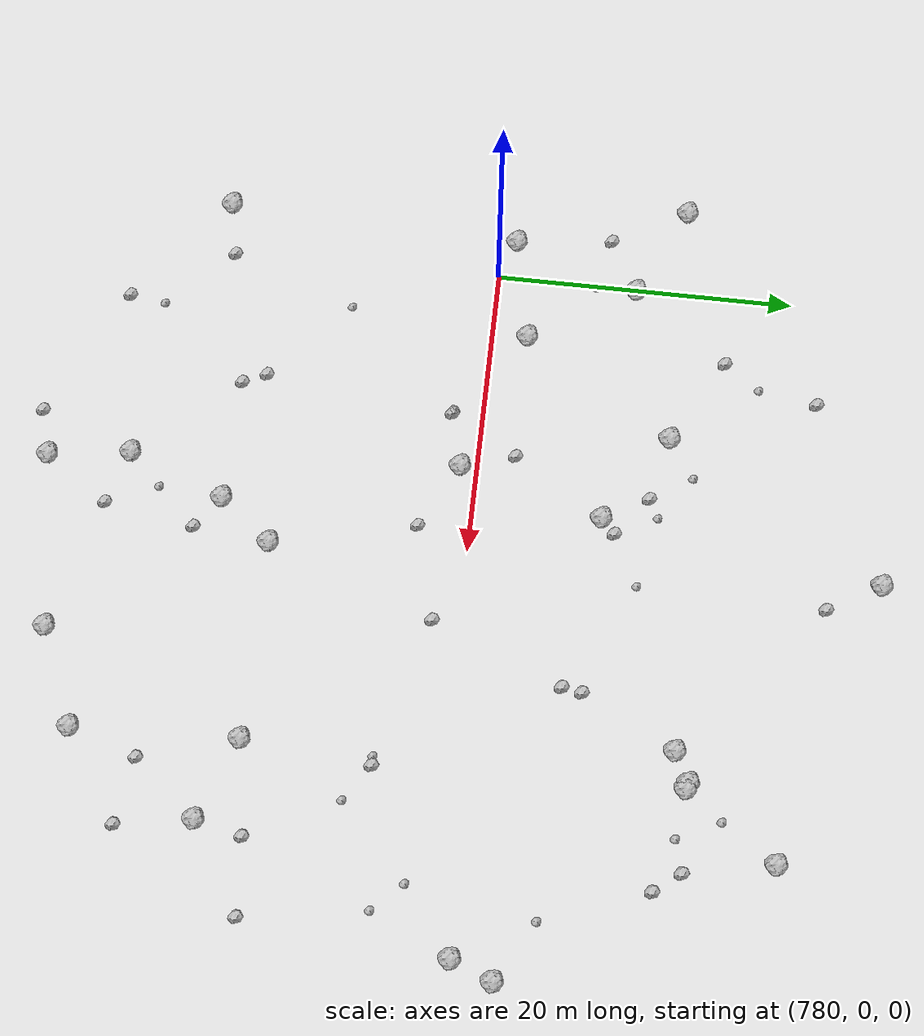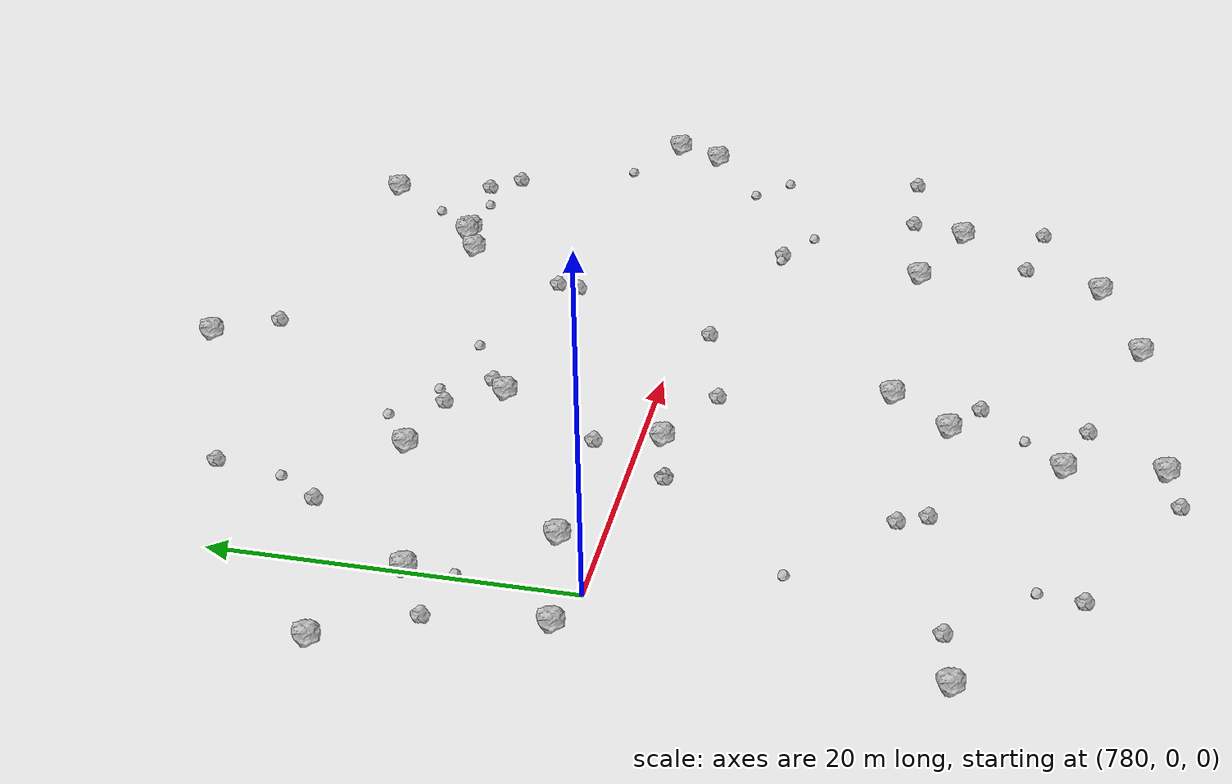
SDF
<sdf version="1.6">
 <world name="default">
  <include><uri>model://sun</uri></include>
  <model name="rock1_20_4">
   <include><uri>model://rock1</uri><pose>814.2956570211775 -12.995889982059378 0.5 0 0 0</pose></include>
  </model>
  <model name="rock1_20_5">
   <include><uri>model://rock1</uri><pose>800.9311852224407 -13.002387253428957 0.5 0 0 0</pose></include>
  </model>
  <model name="rock1_20_6">
   <include><uri>model://rock1</uri><pose>814.0952571455994 15.621522596809974 0.5 0 0 0</pose></include>
  </model>
  <model name="rock1_20_7">
   <include><uri>model://rock1</uri><pose>784.4181760202472 2.38059568060293 0.5 0 0 0</pose></include>
  </model>
  <model name="rock1_20_8">
   <include><uri>model://rock1</uri><pose>776.7105798004249 -18.79427382576591 0.5 0 0 0</pose></include>
  </model>
  <model name="rock1_20_9">
   <include><uri>model://rock1</uri><pose>795.6441213808278 -22.920252424329448 0.5 0 0 0</pose></include>
  </model>
  <model name="rock1_20_10">
   <include><uri>model://rock1</uri><pose>799.5822069820347 27.103136374244663 0.5 0 0 0</pose></include>
  </model>
  <model name="rock1_20_11">
   <include><uri>model://rock1</uri><pose>774.0054809005333 12.41190422425204 0.5 0 0 0</pose></include>
  </model>
  <model name="rock1_20_12">
   <include><uri>model://rock1</uri><pose>814.691424529872 -23.95948677520395 0.5 0 0 0</pose></include>
  </model>
  <model name="rock1_20_13">
   <include><uri>model://rock1</uri><pose>777.4399378765813 0.970843013332054 0.5 0 0 0</pose></include>
  </model>
  <model name="rock1_20_14">
   <include><uri>model://rock1</uri><pose>794.231892408434 -1.096677038264712 0.5 0 0 0</pose></include>
  </model>
  <model name="rock1_20_15">
   <include><uri>model://rock1</uri><pose>812.1009767616615 14.60600244683119 0.5 0 0 0</pose></include>
  </model>
  <model name="rock1_20_16">
   <include><uri>model://rock1</uri><pose>790.7954599089096 12.534567388479253 0.5 0 0 0</pose></include>
  </model>
  <model name="rock1_20_17">
   <include><uri>model://rock1</uri><pose>796.8880604455628 8.537743014936567 0.5 0 0 0</pose></include>
  </model>
  <model name="rock1_20_18">
   <include><uri>model://rock1</uri><pose>818.7313497944864 21.506388558471393 0.5 0 0 0</pose></include>
  </model>
  <model name="rock1_20_19">
   <include><uri>model://rock1</uri><pose>780.2422312361366 9.386300126803746 0.5 0 0 0</pose></include>
  </model>
  <model name="rock1_20_20">
   <include><uri>model://rock1</uri><pose>814.4821929335158 15.478554741264368 0.5 0 0 0</pose></include>
  </model>
  <model name="rock1_20_21">
   <include><uri>model://rock1</uri><pose>808.2178711605711 -26.606528269494277 0.5 0 0 0</pose></include>
  </model>
  <model name="rock1_20_22">
   <include><uri>model://rock1</uri><pose>798.1679765168304 -16.47847563490781 0.5 0 0 0</pose></include>
  </model>
  <model name="rock1_20_23">
   <include><uri>model://rock1</uri><pose>819.808153575163 -15.15194088388907 0.5 0 0 0</pose></include>
  </model>
  <model name="rock1_20_24">
   <include><uri>model://rock1</uri><pose>796.3752662934154 -28.38351896222941 0.5 0 0 0</pose></include>
  </model>
  <model name="rock1_20_25">
   <include><uri>model://rock1</uri><pose>827.921301379985 4.609823203540934 0.5 0 0 0</pose></include>
  </model>
  <model name="rock1_20_26">
   <include><uri>model://rock1</uri><pose>826.8131084467598 1.8626052285913985 0.5 0 0 0</pose></include>
  </model>
  <model name="rock2_20_0">
   <include><uri>model://rock2</uri><pose>789.7607518878974 -16.27439020572342 0.3 0 0 0</pose></include>
  </model>
  <model name="rock2_20_1">
   <include><uri>model://rock2</uri><pose>816.1858900143451 -19.38402429995875 0.3 0 0 0</pose></include>
  </model>
  <model name="rock2_20_2">
   <include><uri>model://rock2</uri><pose>820.6432070960407 -20.1448860328945 0.3 0 0 0</pose></include>
  </model>
  <model name="rock2_20_3">
   <include><uri>model://rock2</uri><pose>790.4643372028982 -2.0093286654084395 0.3 0 0 0</pose></include>
  </model>
  <model name="rock2_20_4">
   <include><uri>model://rock2</uri><pose>776.6207072468467 7.457035338786255 0.3 0 0 0</pose></include>
  </model>
  <model name="rock2_20_5">
   <include><uri>model://rock2</uri><pose>780.360129361689 -18.046840265286306 0.3 0 0 0</pose></include>
  </model>
  <model name="rock2_20_6">
   <include><uri>model://rock2</uri><pose>797.8257978768681 9.504377105047183 0.3 0 0 0</pose></include>
  </model>
  <model name="rock2_20_7">
   <include><uri>model://rock2</uri><pose>789.0155284134422 -14.691010447130008 0.3 0 0 0</pose></include>
  </model>
  <model name="rock2_20_8">
   <include><uri>model://rock2</uri><pose>784.2037395192972 -24.701157766862757 0.3 0 0 0</pose></include>
  </model>
  <model name="rock2_20_9">
   <include><uri>model://rock2</uri><pose>793.0812972692923 2.5103623135128714 0.3 0 0 0</pose></include>
  </model>
  <model name="rock2_20_10">
   <include><uri>model://rock2</uri><pose>787.215342838281 22.145075990664374 0.3 0 0 0</pose></include>
  </model>
  <model name="rock2_20_11">
   <include><uri>model://rock2</uri><pose>798.6341354290527 -3.3912522580984152 0.3 0 0 0</pose></include>
  </model>
  <model name="rock2_20_12">
   <include><uri>model://rock2</uri><pose>819.8650565970262 15.714480274466851 0.3 0 0 0</pose></include>
  </model>
  <model name="rock2_20_13">
   <include><uri>model://rock2</uri><pose>821.2249438173511 13.969794580571524 0.3 0 0 0</pose></include>
  </model>
  <model name="rock2_20_14">
   <include><uri>model://rock2</uri><pose>825.6327402855613 -11.628006118382071 0.3 0 0 0</pose></include>
  </model>
  <model name="rock2_20_15">
   <include><uri>model://rock2</uri><pose>784.902285686312 15.815749204771492 0.3 0 0 0</pose></include>
  </model>
  <model name="rock2_20_16">
   <include><uri>model://rock2</uri><pose>815.0707833260835 -4.425103600113541 0.3 0 0 0</pose></include>
  </model>
  <model name="rock2_20_17">
   <include><uri>model://rock2</uri><pose>790.3925794277559 -1.9828235229555382 0.3 0 0 0</pose></include>
  </model>
  <model name="rock2_20_18">
   <include><uri>model://rock2</uri><pose>800.3196574987094 -18.045047737912807 0.3 0 0 0</pose></include>
  </model>
  <model name="rock2_20_19">
   <include><uri>model://rock2</uri><pose>793.2198846996137 -29.19996315843892 0.3 0 0 0</pose></include>
  </model>
  <model name="rock2_20_20">
   <include><uri>model://rock2</uri><pose>808.6167296030164 7.084334356220779 0.3 0 0 0</pose></include>
  </model>
  <model name="rock2_20_21">
   <include><uri>model://rock2</uri><pose>808.8406321250761 8.405403308947925 0.3 0 0 0</pose></include>
  </model>
  <model name="rock2_20_22">
   <include><uri>model://rock2</uri><pose>795.1356328516068 11.598548014314773 0.3 0 0 0</pose></include>
  </model>
  <model name="rock2_20_23">
   <include><uri>model://rock2</uri><pose>801.5460046312621 23.64371995509328 0.3 0 0 0</pose></include>
  </model>
  <model name="rock2_20_24">
   <include><uri>model://rock2</uri><pose>820.5278611359332 -11.971109590569718 0.3 0 0 0</pose></include>
  </model>
  <model name="rock2_20_25">
   <include><uri>model://rock2</uri><pose>805.0187208586785 -1.704890928080463 0.3 0 0 0</pose></include>
  </model>
  <model name="rock2_20_26">
   <include><uri>model://rock2</uri><pose>799.261829849721 -24.08109720423783 0.3 0 0 0</pose></include>
  </model>
  <model name="rock3_20_0">
   <include><uri>model://rock3</uri><pose>784.523915859331 -22.334899140004982 0.2 0 0 0</pose></include>
  </model>
  <model name="rock3_20_1">
   <include><uri>model://rock3</uri><pose>814.451825729607 -4.460682420191805 0.2 0 0 0</pose></include>
  </model>
  <model name="rock3_20_2">
   <include><uri>model://rock3</uri><pose>824.3033036990921 -3.4394384926708206 0.2 0 0 0</pose></include>
  </model>
  <model name="rock3_20_3">
   <include><uri>model://rock3</uri><pose>786.5803477105115 18.200773654628655 0.2 0 0 0</pose></include>
  </model>
  <model name="rock3_20_4">
   <include><uri>model://rock3</uri><pose>783.4254793179977 -9.648181906079717 0.2 0 0 0</pose></include>
  </model>
  <model name="rock3_20_5">
   <include><uri>model://rock3</uri><pose>780.1823264379973 6.675818162840692 0.2 0 0 0</pose></include>
  </model>
  <model name="rock3_20_6">
   <include><uri>model://rock3</uri><pose>822.3949792115094 -1.4949292598274297 0.2 0 0 0</pose></include>
  </model>
  <model name="rock3_20_7">
   <include><uri>model://rock3</uri><pose>816.3109583447784 17.942320933358104 0.2 0 0 0</pose></include>
  </model>
  <model name="rock3_20_8">
   <include><uri>model://rock3</uri><pose>797.7670513766345 -20.73511250828249 0.2 0 0 0</pose></include>
  </model>
  <model name="rock3_20_9">
   <include><uri>model://rock3</uri><pose>801.2785456578083 11.23173908293085 0.2 0 0 0</pose></include>
  </model>
  <model name="rock3_20_10">
   <include><uri>model://rock3</uri><pose>793.3729102611137 14.318683688758114 0.2 0 0 0</pose></include>
  </model>
  <model name="rock3_20_11">
   <include><uri>model://rock3</uri><pose>817.5242692263766 -6.056429550243866 0.2 0 0 0</pose></include>
  </model>
  <model name="rock3_20_12">
   <include><uri>model://rock3</uri><pose>796.4155140648377 12.23002684738075 0.2 0 0 0</pose></include>
  </model>
  <model name="rock3_20_13">
   <include><uri>model://rock3</uri><pose>823.8578800134255 6.957000863793425 0.2 0 0 0</pose></include>
  </model>
  <model name="rock3_20_14">
   <include><uri>model://rock3</uri><pose>817.7065038565329 15.096785661265379 0.2 0 0 0</pose></include>
  </model>
 </world>
</sdf>
